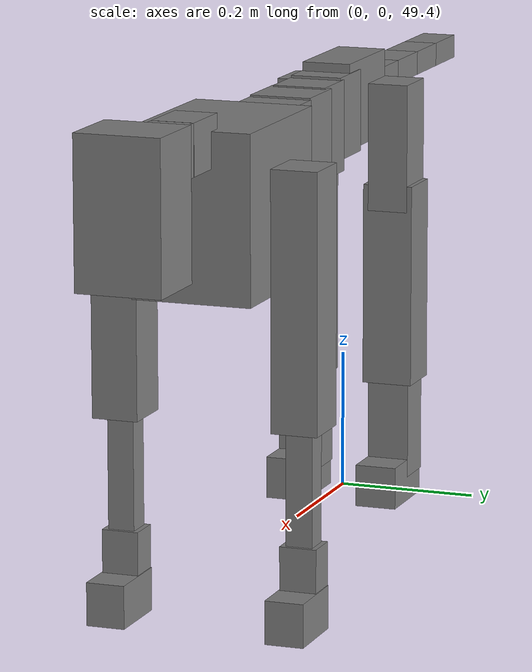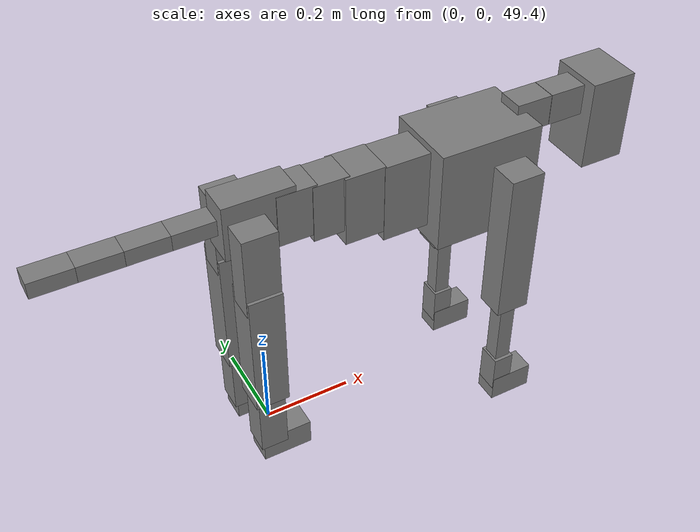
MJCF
<mujoco model="dog">

    <default>
        <joint armature="0.02" stiffness="1" damping="0.2" limited="true"/>
        <geom condim="3" friction="1 0.05 0.05" margin="0.01"/>
        <motor ctrllimited="true" ctrlrange="-1.0 1.0" forcelimited="true" gear="50"/>
    </default>

    <compiler inertiafromgeom="true" angle="radian"/>

    <option timestep="0.016" iterations="50" tolerance="1e-10" solver="Newton" jacobian="dense" cone="pyramidal"/>

    <size nconmax="20000" njmax="60000" nstack="5000000"/>
    <visual>
        <map force="0.1" zfar="30"/>
        <rgba haze="0.15 0.25 0.35 1"/>
        <quality shadowsize="2048"/>
        <global offwidth="800" offheight="800"/>
    </visual>

    <asset>
        <texture type="skybox" builtin="gradient" rgb1="0.3 0.5 0.7" rgb2="0 0 0" width="512" height="512"/>
        <texture name="texplane" type="2d" builtin="checker" rgb1=".2 .3 .4" rgb2=".1 0.15 0.2" width="512" height="512"
                 mark="cross" markrgb=".8 .8 .8"/>
        <texture name="texgeom" type="cube" builtin="flat" mark="cross" width="127" height="1278" rgb1="0.8 0.6 0.4"
                 rgb2="0.8 0.6 0.4" markrgb="1 1 1" random="0.01"/>

        <material name="matplane" reflectance="0.3" texture="texplane" texrepeat="1 1" texuniform="true"/>
        <material name="matgeom" texture="texgeom" texuniform="true" rgba="0.8 0.6 .4 1"/>
    </asset>

    <worldbody>
        <geom name="floor" pos="0 0 0" size="0 0 .25" type="plane" material="matplane" condim="3"/>

        <light directional="false" diffuse=".2 .2 .2" specular="0 0 0" pos="0 0 5" dir="0 0 -1" castshadow="false"/>
        <light mode="targetbodycom" target="torso" directional="false" diffuse=".8 .8 .8" specular="0.3 0.3 0.3"
               pos="0 0 4.0" dir="0 0 -1"/>

        <body name="root" pos="0 0 50">
            <freejoint name="root_1"/>
            <geom type="box" pos="0 0 -0.02" size="0.0774  0.0358  0.063" density="2030"/>

            <body name="spine1" pos="0.054 0 0">
                <joint name="spine1_y" axis="0 1 0" range="0 0.7" limited="true"/>
                <geom type="box" pos="0.02375 0 -0.03" size="0.04375  0.0375  0.05985" density="2030"/>

                <body name="spine2" pos="0.0612 0 0">
                    <joint name="spine2_y" axis="0 1 0" range="-0.15 0.15" limited="true"/>
                    <geom type="box" pos="0.03555  0  -0.04" size="0.04055  0.039  0.06615" density="2030"/>

                    <body name="spine3" pos="0.0730 0 0">
                        <joint name="spine3_y" axis="0 1 0" range="-0.15 0.15" limited="true"/>
                        <geom type="box" pos="0.03555  0  -0.057" size="0.04555  0.0445  0.081" density="2030"/>

                        <body name="spine4" pos="0.0780 0 0">
                            <joint name="spine4_y" axis="0 1 0" range="-0.15 0.15" limited="true"/>
                            <geom type="box" pos="0.05265  0  -0.07" size="0.05265  0.045  0.09135" density="2030"/>

                            <body name="torso" pos="0.1082 0 0">
                                <joint name="torso_y" axis="0 1 0" range="-0.15 0.15" limited="true"/>
                                <geom type="box" pos="0.11925  0  -0.085" size="0.11925  0.085  0.11745"
                                      density="2030"/>

                                <body name="neck1" pos="0.2160  0   0.0180">
                                    <joint name="neck1_y" axis="0 1 0" range="-1.2  -1" limited="true"/>
                                    <geom type="box" pos="0.0423  0  0" size="0.0423  0.03  0.036" density="2325"/>

                                    <body name="neck2" pos="0.0853  0  0">
                                        <joint name="neck2_y" axis="0 1 0" range="0.1  0" limited="true"/>
                                        <geom type="box" pos="0.0423  0  0" size="0.0423  0.03  0.036" density="2325"/>

                                        <body name="head" pos="0.0853  0  0">
                                            <joint name="head_y" axis="0 1 0" range="-0.3  -0.2" limited="true"/>
                                            <geom type="box" pos="0.0531  0  -0.055" size="0.0531  0.06  0.1044"
                                                  density="4030"/>

                                        </body>
                                    </body>
                                </body>

                                <body name="front_shoulder" pos="0.156  0   -0.0480">
                                    <joint name="front_shoulder_y" axis="0 1 0" range="-1 1.5" limited="true"/>
                                    <geom type="box" pos="0 0.13 -0.1541" size="0.0386  0.0330  0.1808" density="1158"/>
                                    <geom type="box" pos="0 -0.13 -0.1541" size="0.0386  0.0330  0.1808"
                                          density="1158"/>

                                    <body name="front_elbow" pos="0  0  -0.3082">
                                        <joint name="front_elbow_y" axis="0 1 0" range="-2 0" limited="true"/>
                                        <geom type="box" pos="0 0.13 -0.1000" size="0.0185  0.0189  0.1000"
                                              density="1081"/>
                                        <geom type="box" pos="0 -0.13 -0.1000" size="0.0185  0.0189  0.1000"
                                              density="1081"/>

                                        <body name="front_wrist" pos="0  0  -0.2000">
                                            <joint name="front_wrist_y" axis="0 1 0" range="-0.2 0" limited="true"/>
                                            <geom type="box" pos="0 0.13 -0.0316" size="0.0237  0.0263  0.0448"
                                                  density="1664"/>
                                            <geom type="box" pos="0 -0.13 -0.0316" size="0.0237  0.0263  0.0448"
                                                  density="1664"/>

                                            <body name="front_finger_end" pos="0  0  -0.0633">
                                                <joint name="front_finger_y" axis="0 1 0" range="-0.4 1"
                                                       limited="true"/>
                                                <geom type="box" pos="0.0276  0.13  -0.0157"
                                                      size="0.0506  0.0276  0.0307" density="1515"/>
                                                <geom type="box" pos="0.0276  -0.13  -0.0157"
                                                      size="0.0506  0.0276  0.0307" density="1515"/>

                                            </body>

                                        </body>
                                    </body>
                                </body>

                            </body>
                        </body>
                    </body>
                </body>
            </body>

            <body name="back_hip" pos="-0.03 0 -0.018">
                <joint name="back_hip_y" axis="0 1 0" range="-1.5 0.3" limited="true"/>
                <geom type="box" pos="0 0.07 -0.0709" size="0.0380  0.0298  0.0937" density="1154"/>
                <geom type="box" pos="0 -0.07 -0.0709" size="0.0380  0.0298  0.0937" density="1154"/>

                <body name="back_knee" pos="0  0  -0.1419">
                    <joint name="back_knee_y" axis="0 1 0" range="0 2.8" limited="true"/>
                    <geom type="box" pos="0 0.07 -0.1327" size="0.0375  0.0370  0.1483" density="1227"/>
                    <geom type="box" pos="0 -0.07 -0.1327" size="0.0375  0.0370  0.1483" density="1227"/>

                    <body name="back_ankle" pos="0  0  -0.2654">
                        <joint name="back_ankle_y" axis="0 1 0" range="-2.2 0" limited="true"/>
                        <geom type="box" pos="0 0.07 -0.0723" size="0.0308  0.0308  0.0835" density="1284"/>
                        <geom type="box" pos="0 -0.07 -0.0723" size="0.0308  0.0308  0.0835" density="1284"/>

                        <body name="back_toe_end" pos="0  0  -0.1445">
                            <joint name="back_toe_y" axis="0 1 0" range="-0.4 1" limited="true"/>
                            <geom type="box" pos="0.0305  0.07  -0.0159" size="0.0559  0.0305  0.0309" density="1515"/>
                            <geom type="box" pos="0.0305  -0.07  -0.0159" size="0.0559  0.0305  0.0309" density="1515"/>

                        </body>
                    </body>
                </body>
            </body>

            <body name="tail1" pos="-0.074 0 -0.006">
                <joint name="tail1_y" axis="0 1 0" range="-0.2 0.2" limited="true"/>
                <geom type="box" pos="-0.0536  0  0" size="0.045  0.025  0.0175" density="1587"/>

                <body name="tail2" pos="-0.09 0 0">
                    <joint name="tail2_y" axis="0 1 0" range="-0.2 0.2" limited="true"/>
                    <geom type="box" pos="-0.0536  0  0" size="0.045  0.025  0.0175" density="1587"/>

                    <body name="tail3" pos="-0.09 0 0">
                        <joint name="tail3_y" axis="0 1 0" range="-0.2 0.2" limited="true"/>
                        <geom type="box" pos="-0.0536  0  0" size="0.045  0.025  0.0175" density="1587"/>

                        <body name="tail4" pos="-0.09 0 0">
                            <joint name="tail4_y" axis="0 1 0" range="-0.2 0.2" limited="true"/>
                            <geom type="box" pos="-0.0536  0  0" size="0.045  0.025  0.0175" density="1587"/>

                        </body>
                    </body>
                </body>
            </body>
        </body>
    </worldbody>

    <actuator>
        <motor joint="spine1_y" forcerange="-150 150     "/>
        <motor joint="spine2_y" forcerange="-150 150     "/>
        <motor joint="spine3_y" forcerange="-150 150     "/>
        <motor joint="spine4_y" forcerange="-150 150     "/>
        <motor joint="torso_y" forcerange="-150 150     "/>
        <motor joint="neck1_y" forcerange="-100 100       "/>
        <motor joint="neck2_y" forcerange="-100 100       "/>
        <motor joint="head_y" forcerange="-150 150       "/>
        <motor joint="front_shoulder_y" forcerange="-157.79 162.35"/>
        <motor joint="front_elbow_y" forcerange="-127.21 110.29"/>
        <motor joint="front_wrist_y" forcerange="-119.64 90.72"/>
        <motor joint="front_finger_y" forcerange="-44.08 63.01"/>
        <motor joint="back_hip_y" forcerange="-311.23 286.15"/>
        <motor joint="back_knee_y" forcerange="-396.23 341.76"/>
        <motor joint="back_angle_y" forcerange="-195.26 197.77"/>
        <motor joint="back_toe_y" forcerange="-102.83 60.97"/>
        <motor joint="tail1_y" forcerange="-50 50     "/>
        <motor joint="tail2_y" forcerange="-50 50     "/>
        <motor joint="tail3_y" forcerange="-50 50     "/>
        <motor joint="tail4_y" forcerange="-50 50     "/>
    </actuator>
</mujoco>
